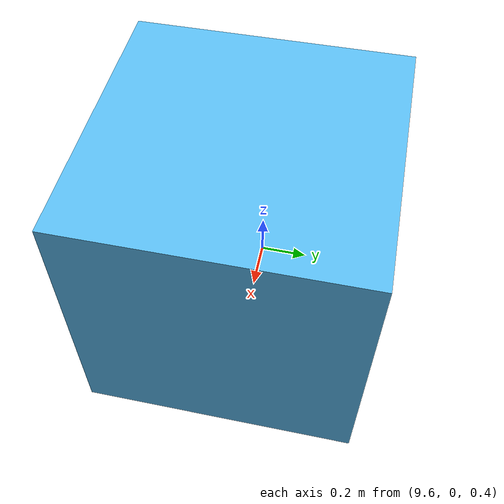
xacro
<?xml version="1.0"?>
<robot name="box" xmlns:xacro="http://ros.org/wiki/xacro">

 <xacro:macro name="default_inertial" params="mass">
    <inertial>
      <mass value="${mass}"/>
      <inertia ixx="1.0" ixy="0.0" ixz="0.0" iyy="1.0" iyz="0.0" izz="1.0" />
    </inertial>
 </xacro:macro>

<link name="world"/>

<link name="box">
	<visual>
	   <geometry>
		     <box size="1 1 1"/>
     </geometry>
	   <origin xyz= "5 0 0.5"/>
	</visual>
	<collision>
		<geometry>
		    <box size="1 1 1"/>
		</geometry>
	  <origin xyz= "5 0 0.5"/>
	</collision>
	<inertial>
		<mass value="1.0"/>
		<inertia ixx="0.17" ixy="0.0" ixz="0.0" iyy="0.17" iyz="0.0" izz="0.17" />
		<origin xyz= "5 0 0.5"/>
  </inertial>
</link>

<joint name="basetoworld" type="planar">
	<parent link="world"/>
	<child link="box"/>
	<origin xyz= "5 0 0.5"/>
</joint>

<gazebo reference="box">
	<mu1>1</mu1>
	<mu2>1</mu2>
	<minDepth>0</minDepth>
	<kd>1</kd>
	<kp>10000</kp>
	<maxVel>0.01</maxVel>
</gazebo>

</robot>
